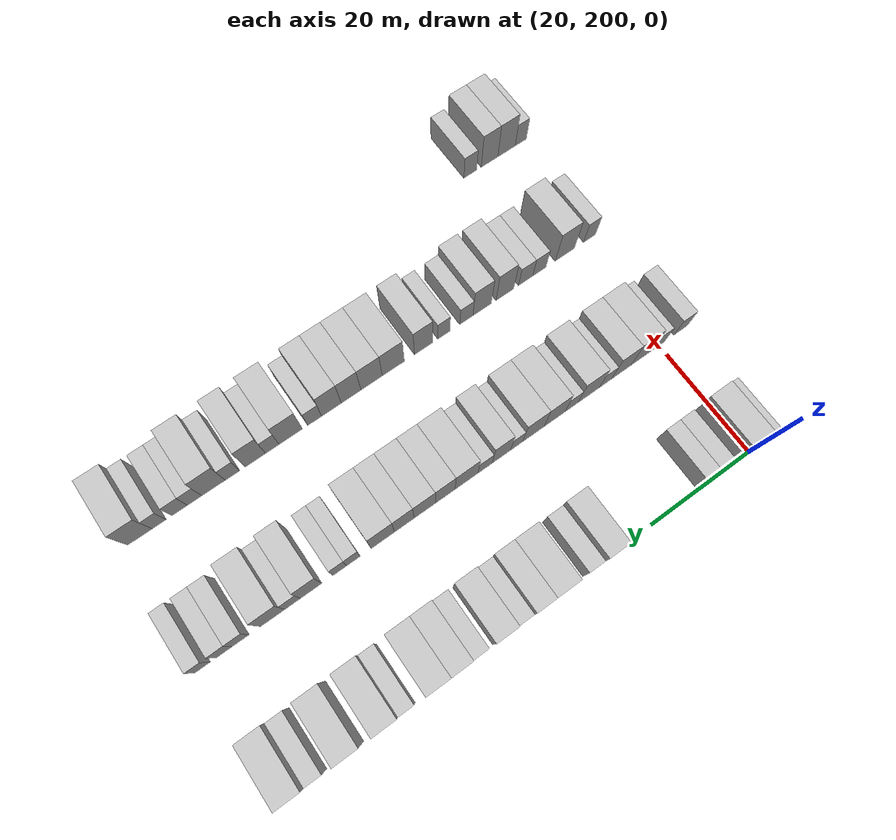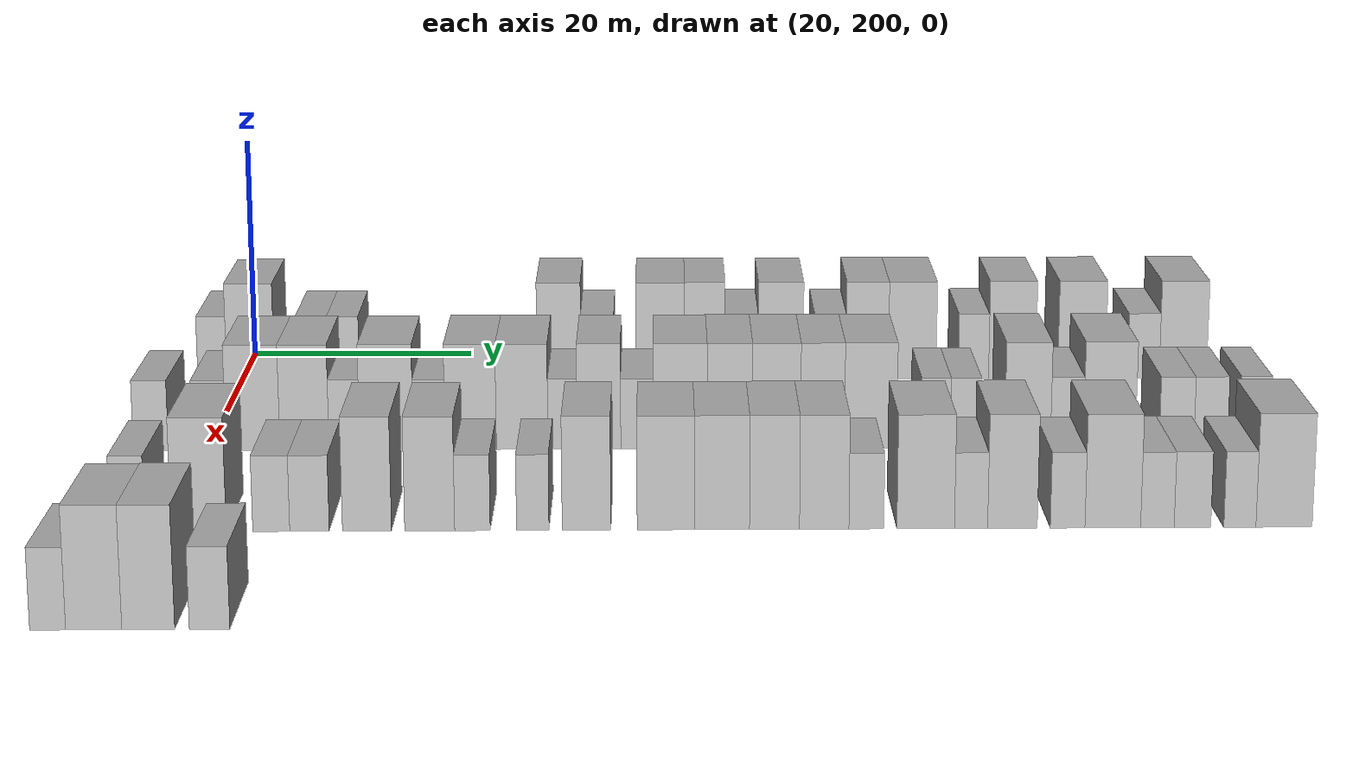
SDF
<sdf version="1.6">
 <world name="default">
  <model name="building_150">
   <static>1</static>
   <pose>25.0000 197.4068 0 0.000000 0.000000 0.000000</pose>
   <link name="link">
    <pose>0 0 3.00 0 0 0</pose>
    <collision name="collision"><geometry><box><size>10.0000 2.5920 6.0000</size></box></geometry></collision>
    <visual name="visual">
     <cast_shadows>0</cast_shadows>
     <geometry><box><size>10.0000 2.5920 6.0000</size></box></geometry>
     <material>
      <script>
       <uri>model://HANNAS_wall/materials/scripts</uri>
       <uri>model://HANNAS_wall/materials/textures</uri>
       <name>vrc/HANNAS_wall</name>
      </script>
     </material>
    </visual>
   </link>
  </model>
  <model name="building_151">
   <static>1</static>
   <pose>25.0000 200.8364 0 0.000000 0.000000 0.000000</pose>
   <link name="link">
    <pose>0 0 4.50 0 0 0</pose>
    <collision name="collision"><geometry><box><size>10.0000 4.2672 9.0000</size></box></geometry></collision>
    <visual name="visual">
     <cast_shadows>0</cast_shadows>
     <geometry><box><size>10.0000 4.2672 9.0000</size></box></geometry>
     <material>
      <script>
       <uri>model://HANNAS_wall/materials/scripts</uri>
       <uri>model://HANNAS_wall/materials/textures</uri>
       <name>vrc/HANNAS_wall</name>
      </script>
     </material>
    </visual>
   </link>
  </model>
  <model name="building_152">
   <static>1</static>
   <pose>25.0000 206.3669 0 0.000000 0.000000 0.000000</pose>
   <link name="link">
    <pose>0 0 3.00 0 0 0</pose>
    <collision name="collision"><geometry><box><size>10.0000 2.7937 6.0000</size></box></geometry></collision>
    <visual name="visual">
     <cast_shadows>0</cast_shadows>
     <geometry><box><size>10.0000 2.7937 6.0000</size></box></geometry>
     <material>
      <script>
       <uri>model://HANNAS_wall/materials/scripts</uri>
       <uri>model://HANNAS_wall/materials/textures</uri>
       <name>vrc/HANNAS_wall</name>
      </script>
     </material>
    </visual>
   </link>
  </model>
  <model name="building_153">
   <static>1</static>
   <pose>25.0000 209.1671 0 0.000000 0.000000 0.000000</pose>
   <link name="link">
    <pose>0 0 3.00 0 0 0</pose>
    <collision name="collision"><geometry><box><size>10.0000 2.8067 6.0000</size></box></geometry></collision>
    <visual name="visual">
     <cast_shadows>0</cast_shadows>
     <geometry><box><size>10.0000 2.8067 6.0000</size></box></geometry>
     <material>
      <script>
       <uri>model://HANNAS_wall/materials/scripts</uri>
       <uri>model://HANNAS_wall/materials/textures</uri>
       <name>vrc/HANNAS_wall</name>
      </script>
     </material>
    </visual>
   </link>
  </model>
  <model name="building_154">
   <static>1</static>
   <pose>25.0000 228.4680 0 0.000000 0.000000 0.000000</pose>
   <link name="link">
    <pose>0 0 4.50 0 0 0</pose>
    <collision name="collision"><geometry><box><size>10.0000 3.9317 9.0000</size></box></geometry></collision>
    <visual name="visual">
     <cast_shadows>0</cast_shadows>
     <geometry><box><size>10.0000 3.9317 9.0000</size></box></geometry>
     <material>
      <script>
       <uri>model://HANNAS_wall/materials/scripts</uri>
       <uri>model://HANNAS_wall/materials/textures</uri>
       <name>vrc/HANNAS_wall</name>
      </script>
     </material>
    </visual>
   </link>
  </model>
  <model name="building_155">
   <static>1</static>
   <pose>25.0000 231.9170 0 0.000000 0.000000 0.000000</pose>
   <link name="link">
    <pose>0 0 3.00 0 0 0</pose>
    <collision name="collision"><geometry><box><size>10.0000 2.9661 6.0000</size></box></geometry></collision>
    <visual name="visual">
     <cast_shadows>0</cast_shadows>
     <geometry><box><size>10.0000 2.9661 6.0000</size></box></geometry>
     <material>
      <script>
       <uri>model://HANNAS_wall/materials/scripts</uri>
       <uri>model://HANNAS_wall/materials/textures</uri>
       <name>vrc/HANNAS_wall</name>
      </script>
     </material>
    </visual>
   </link>
  </model>
  <model name="building_156">
   <static>1</static>
   <pose>25.0000 237.5787 0 0.000000 0.000000 0.000000</pose>
   <link name="link">
    <pose>0 0 4.50 0 0 0</pose>
    <collision name="collision"><geometry><box><size>10.0000 4.3574 9.0000</size></box></geometry></collision>
    <visual name="visual">
     <cast_shadows>0</cast_shadows>
     <geometry><box><size>10.0000 4.3574 9.0000</size></box></geometry>
     <material>
      <script>
       <uri>model://HANNAS_wall/materials/scripts</uri>
       <uri>model://HANNAS_wall/materials/textures</uri>
       <name>vrc/HANNAS_wall</name>
      </script>
     </material>
    </visual>
   </link>
  </model>
  <model name="building_157">
   <static>1</static>
   <pose>25.0000 241.5695 0 0.000000 0.000000 0.000000</pose>
   <link name="link">
    <pose>0 0 4.50 0 0 0</pose>
    <collision name="collision"><geometry><box><size>10.0000 3.6242 9.0000</size></box></geometry></collision>
    <visual name="visual">
     <cast_shadows>0</cast_shadows>
     <geometry><box><size>10.0000 3.6242 9.0000</size></box></geometry>
     <material>
      <script>
       <uri>model://HANNAS_wall/materials/scripts</uri>
       <uri>model://HANNAS_wall/materials/textures</uri>
       <name>vrc/HANNAS_wall</name>
      </script>
     </material>
    </visual>
   </link>
  </model>
  <model name="building_158">
   <static>1</static>
   <pose>25.0000 244.8671 0 0.000000 0.000000 0.000000</pose>
   <link name="link">
    <pose>0 0 3.00 0 0 0</pose>
    <collision name="collision"><geometry><box><size>10.0000 2.9711 6.0000</size></box></geometry></collision>
    <visual name="visual">
     <cast_shadows>0</cast_shadows>
     <geometry><box><size>10.0000 2.9711 6.0000</size></box></geometry>
     <material>
      <script>
       <uri>model://HANNAS_wall/materials/scripts</uri>
       <uri>model://HANNAS_wall/materials/textures</uri>
       <name>vrc/HANNAS_wall</name>
      </script>
     </material>
    </visual>
   </link>
  </model>
  <model name="building_159">
   <static>1</static>
   <pose>25.0000 248.3835 0 0.000000 0.000000 0.000000</pose>
   <link name="link">
    <pose>0 0 4.50 0 0 0</pose>
    <collision name="collision"><geometry><box><size>10.0000 4.0617 9.0000</size></box></geometry></collision>
    <visual name="visual">
     <cast_shadows>0</cast_shadows>
     <geometry><box><size>10.0000 4.0617 9.0000</size></box></geometry>
     <material>
      <script>
       <uri>model://HANNAS_wall/materials/scripts</uri>
       <uri>model://HANNAS_wall/materials/textures</uri>
       <name>vrc/HANNAS_wall</name>
      </script>
     </material>
    </visual>
   </link>
  </model>
  <model name="building_160">
   <static>1</static>
   <pose>25.0000 252.8399 0 0.000000 0.000000 0.000000</pose>
   <link name="link">
    <pose>0 0 3.00 0 0 0</pose>
    <collision name="collision"><geometry><box><size>10.0000 2.8510 6.0000</size></box></geometry></collision>
    <visual name="visual">
     <cast_shadows>0</cast_shadows>
     <geometry><box><size>10.0000 2.8510 6.0000</size></box></geometry>
     <material>
      <script>
       <uri>model://HANNAS_wall/materials/scripts</uri>
       <uri>model://HANNAS_wall/materials/textures</uri>
       <name>vrc/HANNAS_wall</name>
      </script>
     </material>
    </visual>
   </link>
  </model>
  <model name="building_161">
   <static>1</static>
   <pose>25.0000 256.1674 0 0.000000 0.000000 0.000000</pose>
   <link name="link">
    <pose>0 0 4.50 0 0 0</pose>
    <collision name="collision"><geometry><box><size>10.0000 3.8041 9.0000</size></box></geometry></collision>
    <visual name="visual">
     <cast_shadows>0</cast_shadows>
     <geometry><box><size>10.0000 3.8041 9.0000</size></box></geometry>
     <material>
      <script>
       <uri>model://HANNAS_wall/materials/scripts</uri>
       <uri>model://HANNAS_wall/materials/textures</uri>
       <name>vrc/HANNAS_wall</name>
      </script>
     </material>
    </visual>
   </link>
  </model>
  <model name="building_162">
   <static>1</static>
   <pose>25.0000 260.2122 0 0.000000 0.000000 0.000000</pose>
   <link name="link">
    <pose>0 0 4.50 0 0 0</pose>
    <collision name="collision"><geometry><box><size>10.0000 4.2854 9.0000</size></box></geometry></collision>
    <visual name="visual">
     <cast_shadows>0</cast_shadows>
     <geometry><box><size>10.0000 4.2854 9.0000</size></box></geometry>
     <material>
      <script>
       <uri>model://HANNAS_wall/materials/scripts</uri>
       <uri>model://HANNAS_wall/materials/textures</uri>
       <name>vrc/HANNAS_wall</name>
      </script>
     </material>
    </visual>
   </link>
  </model>
  <model name="building_163">
   <static>1</static>
   <pose>25.0000 265.7214 0 0.000000 0.000000 0.000000</pose>
   <link name="link">
    <pose>0 0 3.00 0 0 0</pose>
    <collision name="collision"><geometry><box><size>10.0000 2.7330 6.0000</size></box></geometry></collision>
    <visual name="visual">
     <cast_shadows>0</cast_shadows>
     <geometry><box><size>10.0000 2.7330 6.0000</size></box></geometry>
     <material>
      <script>
       <uri>model://HANNAS_wall/materials/scripts</uri>
       <uri>model://HANNAS_wall/materials/textures</uri>
       <name>vrc/HANNAS_wall</name>
      </script>
     </material>
    </visual>
   </link>
  </model>
  <model name="building_164">
   <static>1</static>
   <pose>25.0000 269.2028 0 0.000000 0.000000 0.000000</pose>
   <link name="link">
    <pose>0 0 4.50 0 0 0</pose>
    <collision name="collision"><geometry><box><size>10.0000 4.2298 9.0000</size></box></geometry></collision>
    <visual name="visual">
     <cast_shadows>0</cast_shadows>
     <geometry><box><size>10.0000 4.2298 9.0000</size></box></geometry>
     <material>
      <script>
       <uri>model://HANNAS_wall/materials/scripts</uri>
       <uri>model://HANNAS_wall/materials/textures</uri>
       <name>vrc/HANNAS_wall</name>
      </script>
     </material>
    </visual>
   </link>
  </model>
  <model name="building_165">
   <static>1</static>
   <pose>25.0000 275.4626 0 0.000000 0.000000 0.000000</pose>
   <link name="link">
    <pose>0 0 4.50 0 0 0</pose>
    <collision name="collision"><geometry><box><size>10.0000 4.2897 9.0000</size></box></geometry></collision>
    <visual name="visual">
     <cast_shadows>0</cast_shadows>
     <geometry><box><size>10.0000 4.2897 9.0000</size></box></geometry>
     <material>
      <script>
       <uri>model://HANNAS_wall/materials/scripts</uri>
       <uri>model://HANNAS_wall/materials/textures</uri>
       <name>vrc/HANNAS_wall</name>
      </script>
     </material>
    </visual>
   </link>
  </model>
  <model name="building_166">
   <static>1</static>
   <pose>25.0000 281.0409 0 0.000000 0.000000 0.000000</pose>
   <link name="link">
    <pose>0 0 3.00 0 0 0</pose>
    <collision name="collision"><geometry><box><size>10.0000 2.8670 6.0000</size></box></geometry></collision>
    <visual name="visual">
     <cast_shadows>0</cast_shadows>
     <geometry><box><size>10.0000 2.8670 6.0000</size></box></geometry>
     <material>
      <script>
       <uri>model://HANNAS_wall/materials/scripts</uri>
       <uri>model://HANNAS_wall/materials/textures</uri>
       <name>vrc/HANNAS_wall</name>
      </script>
     </material>
    </visual>
   </link>
  </model>
  <model name="building_167">
   <static>1</static>
   <pose>25.0000 284.6066 0 0.000000 0.000000 0.000000</pose>
   <link name="link">
    <pose>0 0 4.50 0 0 0</pose>
    <collision name="collision"><geometry><box><size>10.0000 4.2644 9.0000</size></box></geometry></collision>
    <visual name="visual">
     <cast_shadows>0</cast_shadows>
     <geometry><box><size>10.0000 4.2644 9.0000</size></box></geometry>
     <material>
      <script>
       <uri>model://HANNAS_wall/materials/scripts</uri>
       <uri>model://HANNAS_wall/materials/textures</uri>
       <name>vrc/HANNAS_wall</name>
      </script>
     </material>
    </visual>
   </link>
  </model>
  <model name="building_328">
   <static>1</static>
   <pose>47.0000 195.3979 0 0.000000 0.000000 0.000000</pose>
   <link name="link">
    <pose>0 0 3.00 0 0 0</pose>
    <collision name="collision"><geometry><box><size>10.0000 2.8920 6.0000</size></box></geometry></collision>
    <visual name="visual">
     <cast_shadows>0</cast_shadows>
     <geometry><box><size>10.0000 2.8920 6.0000</size></box></geometry>
     <material>
      <script>
       <uri>model://HANNAS_wall/materials/scripts</uri>
       <uri>model://HANNAS_wall/materials/textures</uri>
       <name>vrc/HANNAS_wall</name>
      </script>
     </material>
    </visual>
   </link>
  </model>
  <model name="building_329">
   <static>1</static>
   <pose>47.0000 200.2206 0 0.000000 0.000000 0.000000</pose>
   <link name="link">
    <pose>0 0 3.00 0 0 0</pose>
    <collision name="collision"><geometry><box><size>10.0000 2.7534 6.0000</size></box></geometry></collision>
    <visual name="visual">
     <cast_shadows>0</cast_shadows>
     <geometry><box><size>10.0000 2.7534 6.0000</size></box></geometry>
     <material>
      <script>
       <uri>model://HANNAS_wall/materials/scripts</uri>
       <uri>model://HANNAS_wall/materials/textures</uri>
       <name>vrc/HANNAS_wall</name>
      </script>
     </material>
    </visual>
   </link>
  </model>
  <model name="building_330">
   <static>1</static>
   <pose>47.0000 203.8257 0 0.000000 0.000000 0.000000</pose>
   <link name="link">
    <pose>0 0 4.50 0 0 0</pose>
    <collision name="collision"><geometry><box><size>10.0000 4.4569 9.0000</size></box></geometry></collision>
    <visual name="visual">
     <cast_shadows>0</cast_shadows>
     <geometry><box><size>10.0000 4.4569 9.0000</size></box></geometry>
     <material>
      <script>
       <uri>model://HANNAS_wall/materials/scripts</uri>
       <uri>model://HANNAS_wall/materials/textures</uri>
       <name>vrc/HANNAS_wall</name>
      </script>
     </material>
    </visual>
   </link>
  </model>
  <model name="building_331">
   <static>1</static>
   <pose>47.0000 208.0830 0 0.000000 0.000000 0.000000</pose>
   <link name="link">
    <pose>0 0 4.50 0 0 0</pose>
    <collision name="collision"><geometry><box><size>10.0000 4.0576 9.0000</size></box></geometry></collision>
    <visual name="visual">
     <cast_shadows>0</cast_shadows>
     <geometry><box><size>10.0000 4.0576 9.0000</size></box></geometry>
     <material>
      <script>
       <uri>model://HANNAS_wall/materials/scripts</uri>
       <uri>model://HANNAS_wall/materials/textures</uri>
       <name>vrc/HANNAS_wall</name>
      </script>
     </material>
    </visual>
   </link>
  </model>
  <model name="building_332">
   <static>1</static>
   <pose>47.0000 211.3780 0 0.000000 0.000000 0.000000</pose>
   <link name="link">
    <pose>0 0 3.00 0 0 0</pose>
    <collision name="collision"><geometry><box><size>10.0000 2.5324 6.0000</size></box></geometry></collision>
    <visual name="visual">
     <cast_shadows>0</cast_shadows>
     <geometry><box><size>10.0000 2.5324 6.0000</size></box></geometry>
     <material>
      <script>
       <uri>model://HANNAS_wall/materials/scripts</uri>
       <uri>model://HANNAS_wall/materials/textures</uri>
       <name>vrc/HANNAS_wall</name>
      </script>
     </material>
    </visual>
   </link>
  </model>
  <model name="building_333">
   <static>1</static>
   <pose>47.0000 214.8588 0 0.000000 0.000000 0.000000</pose>
   <link name="link">
    <pose>0 0 4.50 0 0 0</pose>
    <collision name="collision"><geometry><box><size>10.0000 4.4293 9.0000</size></box></geometry></collision>
    <visual name="visual">
     <cast_shadows>0</cast_shadows>
     <geometry><box><size>10.0000 4.4293 9.0000</size></box></geometry>
     <material>
      <script>
       <uri>model://HANNAS_wall/materials/scripts</uri>
       <uri>model://HANNAS_wall/materials/textures</uri>
       <name>vrc/HANNAS_wall</name>
      </script>
     </material>
    </visual>
   </link>
  </model>
  <model name="building_334">
   <static>1</static>
   <pose>47.0000 218.3932 0 0.000000 0.000000 0.000000</pose>
   <link name="link">
    <pose>0 0 3.00 0 0 0</pose>
    <collision name="collision"><geometry><box><size>10.0000 2.6394 6.0000</size></box></geometry></collision>
    <visual name="visual">
     <cast_shadows>0</cast_shadows>
     <geometry><box><size>10.0000 2.6394 6.0000</size></box></geometry>
     <material>
      <script>
       <uri>model://HANNAS_wall/materials/scripts</uri>
       <uri>model://HANNAS_wall/materials/textures</uri>
       <name>vrc/HANNAS_wall</name>
      </script>
     </material>
    </visual>
   </link>
  </model>
  <model name="building_335">
   <static>1</static>
   <pose>47.0000 221.8338 0 0.000000 0.000000 0.000000</pose>
   <link name="link">
    <pose>0 0 4.50 0 0 0</pose>
    <collision name="collision"><geometry><box><size>10.0000 4.2419 9.0000</size></box></geometry></collision>
    <visual name="visual">
     <cast_shadows>0</cast_shadows>
     <geometry><box><size>10.0000 4.2419 9.0000</size></box></geometry>
     <material>
      <script>
       <uri>model://HANNAS_wall/materials/scripts</uri>
       <uri>model://HANNAS_wall/materials/textures</uri>
       <name>vrc/HANNAS_wall</name>
      </script>
     </material>
    </visual>
   </link>
  </model>
  <model name="building_336">
   <static>1</static>
   <pose>47.0000 226.0921 0 0.000000 0.000000 0.000000</pose>
   <link name="link">
    <pose>0 0 4.50 0 0 0</pose>
    <collision name="collision"><geometry><box><size>10.0000 4.2746 9.0000</size></box></geometry></collision>
    <visual name="visual">
     <cast_shadows>0</cast_shadows>
     <geometry><box><size>10.0000 4.2746 9.0000</size></box></geometry>
     <material>
      <script>
       <uri>model://HANNAS_wall/materials/scripts</uri>
       <uri>model://HANNAS_wall/materials/textures</uri>
       <name>vrc/HANNAS_wall</name>
      </script>
     </material>
    </visual>
   </link>
  </model>
  <model name="building_337">
   <static>1</static>
   <pose>47.0000 229.4382 0 0.000000 0.000000 0.000000</pose>
   <link name="link">
    <pose>0 0 3.00 0 0 0</pose>
    <collision name="collision"><geometry><box><size>10.0000 2.4176 6.0000</size></box></geometry></collision>
    <visual name="visual">
     <cast_shadows>0</cast_shadows>
     <geometry><box><size>10.0000 2.4176 6.0000</size></box></geometry>
     <material>
      <script>
       <uri>model://HANNAS_wall/materials/scripts</uri>
       <uri>model://HANNAS_wall/materials/textures</uri>
       <name>vrc/HANNAS_wall</name>
      </script>
     </material>
    </visual>
   </link>
  </model>
  <model name="building_338">
   <static>1</static>
   <pose>47.0000 232.4544 0 0.000000 0.000000 0.000000</pose>
   <link name="link">
    <pose>0 0 4.50 0 0 0</pose>
    <collision name="collision"><geometry><box><size>10.0000 3.6148 9.0000</size></box></geometry></collision>
    <visual name="visual">
     <cast_shadows>0</cast_shadows>
     <geometry><box><size>10.0000 3.6148 9.0000</size></box></geometry>
     <material>
      <script>
       <uri>model://HANNAS_wall/materials/scripts</uri>
       <uri>model://HANNAS_wall/materials/textures</uri>
       <name>vrc/HANNAS_wall</name>
      </script>
     </material>
    </visual>
   </link>
  </model>
  <model name="building_339">
   <static>1</static>
   <pose>47.0000 235.6270 0 0.000000 0.000000 0.000000</pose>
   <link name="link">
    <pose>0 0 3.00 0 0 0</pose>
    <collision name="collision"><geometry><box><size>10.0000 2.7304 6.0000</size></box></geometry></collision>
    <visual name="visual">
     <cast_shadows>0</cast_shadows>
     <geometry><box><size>10.0000 2.7304 6.0000</size></box></geometry>
     <material>
      <script>
       <uri>model://HANNAS_wall/materials/scripts</uri>
       <uri>model://HANNAS_wall/materials/textures</uri>
       <name>vrc/HANNAS_wall</name>
      </script>
     </material>
    </visual>
   </link>
  </model>
  <model name="building_340">
   <static>1</static>
   <pose>47.0000 239.2073 0 0.000000 0.000000 0.000000</pose>
   <link name="link">
    <pose>0 0 4.50 0 0 0</pose>
    <collision name="collision"><geometry><box><size>10.0000 4.4303 9.0000</size></box></geometry></collision>
    <visual name="visual">
     <cast_shadows>0</cast_shadows>
     <geometry><box><size>10.0000 4.4303 9.0000</size></box></geometry>
     <material>
      <script>
       <uri>model://HANNAS_wall/materials/scripts</uri>
       <uri>model://HANNAS_wall/materials/textures</uri>
       <name>vrc/HANNAS_wall</name>
      </script>
     </material>
    </visual>
   </link>
  </model>
  <model name="building_341">
   <static>1</static>
   <pose>47.0000 243.2934 0 0.000000 0.000000 0.000000</pose>
   <link name="link">
    <pose>0 0 4.50 0 0 0</pose>
    <collision name="collision"><geometry><box><size>10.0000 3.7419 9.0000</size></box></geometry></collision>
    <visual name="visual">
     <cast_shadows>0</cast_shadows>
     <geometry><box><size>10.0000 3.7419 9.0000</size></box></geometry>
     <material>
      <script>
       <uri>model://HANNAS_wall/materials/scripts</uri>
       <uri>model://HANNAS_wall/materials/textures</uri>
       <name>vrc/HANNAS_wall</name>
      </script>
     </material>
    </visual>
   </link>
  </model>
  <model name="building_342">
   <static>1</static>
   <pose>47.0000 247.1725 0 0.000000 0.000000 0.000000</pose>
   <link name="link">
    <pose>0 0 4.50 0 0 0</pose>
    <collision name="collision"><geometry><box><size>10.0000 4.0165 9.0000</size></box></geometry></collision>
    <visual name="visual">
     <cast_shadows>0</cast_shadows>
     <geometry><box><size>10.0000 4.0165 9.0000</size></box></geometry>
     <material>
      <script>
       <uri>model://HANNAS_wall/materials/scripts</uri>
       <uri>model://HANNAS_wall/materials/textures</uri>
       <name>vrc/HANNAS_wall</name>
      </script>
     </material>
    </visual>
   </link>
  </model>
  <model name="building_343">
   <static>1</static>
   <pose>47.0000 251.0013 0 0.000000 0.000000 0.000000</pose>
   <link name="link">
    <pose>0 0 4.50 0 0 0</pose>
    <collision name="collision"><geometry><box><size>10.0000 3.6410 9.0000</size></box></geometry></collision>
    <visual name="visual">
     <cast_shadows>0</cast_shadows>
     <geometry><box><size>10.0000 3.6410 9.0000</size></box></geometry>
     <material>
      <script>
       <uri>model://HANNAS_wall/materials/scripts</uri>
       <uri>model://HANNAS_wall/materials/textures</uri>
       <name>vrc/HANNAS_wall</name>
      </script>
     </material>
    </visual>
   </link>
  </model>
  <model name="building_344">
   <static>1</static>
   <pose>47.0000 254.9928 0 0.000000 0.000000 0.000000</pose>
   <link name="link">
    <pose>0 0 4.50 0 0 0</pose>
    <collision name="collision"><geometry><box><size>10.0000 4.3421 9.0000</size></box></geometry></collision>
    <visual name="visual">
     <cast_shadows>0</cast_shadows>
     <geometry><box><size>10.0000 4.3421 9.0000</size></box></geometry>
     <material>
      <script>
       <uri>model://HANNAS_wall/materials/scripts</uri>
       <uri>model://HANNAS_wall/materials/textures</uri>
       <name>vrc/HANNAS_wall</name>
      </script>
     </material>
    </visual>
   </link>
  </model>
  <model name="building_345">
   <static>1</static>
   <pose>47.0000 260.3818 0 0.000000 0.000000 0.000000</pose>
   <link name="link">
    <pose>0 0 3.00 0 0 0</pose>
    <collision name="collision"><geometry><box><size>10.0000 2.4358 6.0000</size></box></geometry></collision>
    <visual name="visual">
     <cast_shadows>0</cast_shadows>
     <geometry><box><size>10.0000 2.4358 6.0000</size></box></geometry>
     <material>
      <script>
       <uri>model://HANNAS_wall/materials/scripts</uri>
       <uri>model://HANNAS_wall/materials/textures</uri>
       <name>vrc/HANNAS_wall</name>
      </script>
     </material>
    </visual>
   </link>
  </model>
  <model name="building_346">
   <static>1</static>
   <pose>47.0000 262.8618 0 0.000000 0.000000 0.000000</pose>
   <link name="link">
    <pose>0 0 3.00 0 0 0</pose>
    <collision name="collision"><geometry><box><size>10.0000 2.5242 6.0000</size></box></geometry></collision>
    <visual name="visual">
     <cast_shadows>0</cast_shadows>
     <geometry><box><size>10.0000 2.5242 6.0000</size></box></geometry>
     <material>
      <script>
       <uri>model://HANNAS_wall/materials/scripts</uri>
       <uri>model://HANNAS_wall/materials/textures</uri>
       <name>vrc/HANNAS_wall</name>
      </script>
     </material>
    </visual>
   </link>
  </model>
  <model name="building_347">
   <static>1</static>
   <pose>47.0000 268.0320 0 0.000000 0.000000 0.000000</pose>
   <link name="link">
    <pose>0 0 4.50 0 0 0</pose>
    <collision name="collision"><geometry><box><size>10.0000 3.8161 9.0000</size></box></geometry></collision>
    <visual name="visual">
     <cast_shadows>0</cast_shadows>
     <geometry><box><size>10.0000 3.8161 9.0000</size></box></geometry>
     <material>
      <script>
       <uri>model://HANNAS_wall/materials/scripts</uri>
       <uri>model://HANNAS_wall/materials/textures</uri>
       <name>vrc/HANNAS_wall</name>
      </script>
     </material>
    </visual>
   </link>
  </model>
  <model name="building_348">
   <static>1</static>
   <pose>47.0000 271.3083 0 0.000000 0.000000 0.000000</pose>
   <link name="link">
    <pose>0 0 3.00 0 0 0</pose>
    <collision name="collision"><geometry><box><size>10.0000 2.7366 6.0000</size></box></geometry></collision>
    <visual name="visual">
     <cast_shadows>0</cast_shadows>
     <geometry><box><size>10.0000 2.7366 6.0000</size></box></geometry>
     <material>
      <script>
       <uri>model://HANNAS_wall/materials/scripts</uri>
       <uri>model://HANNAS_wall/materials/textures</uri>
       <name>vrc/HANNAS_wall</name>
      </script>
     </material>
    </visual>
   </link>
  </model>
  <model name="building_349">
   <static>1</static>
   <pose>47.0000 274.8370 0 0.000000 0.000000 0.000000</pose>
   <link name="link">
    <pose>0 0 4.50 0 0 0</pose>
    <collision name="collision"><geometry><box><size>10.0000 4.3208 9.0000</size></box></geometry></collision>
    <visual name="visual">
     <cast_shadows>0</cast_shadows>
     <geometry><box><size>10.0000 4.3208 9.0000</size></box></geometry>
     <material>
      <script>
       <uri>model://HANNAS_wall/materials/scripts</uri>
       <uri>model://HANNAS_wall/materials/textures</uri>
       <name>vrc/HANNAS_wall</name>
      </script>
     </material>
    </visual>
   </link>
  </model>
  <model name="building_350">
   <static>1</static>
   <pose>47.0000 280.4398 0 0.000000 0.000000 0.000000</pose>
   <link name="link">
    <pose>0 0 3.00 0 0 0</pose>
    <collision name="collision"><geometry><box><size>10.0000 2.8848 6.0000</size></box></geometry></collision>
    <visual name="visual">
     <cast_shadows>0</cast_shadows>
     <geometry><box><size>10.0000 2.8848 6.0000</size></box></geometry>
     <material>
      <script>
       <uri>model://HANNAS_wall/materials/scripts</uri>
       <uri>model://HANNAS_wall/materials/textures</uri>
       <name>vrc/HANNAS_wall</name>
      </script>
     </material>
    </visual>
   </link>
  </model>
  <model name="building_351">
   <static>1</static>
   <pose>47.0000 283.2811 0 0.000000 0.000000 0.000000</pose>
   <link name="link">
    <pose>0 0 3.00 0 0 0</pose>
    <collision name="collision"><geometry><box><size>10.0000 2.7979 6.0000</size></box></geometry></collision>
    <visual name="visual">
     <cast_shadows>0</cast_shadows>
     <geometry><box><size>10.0000 2.7979 6.0000</size></box></geometry>
     <material>
      <script>
       <uri>model://HANNAS_wall/materials/scripts</uri>
       <uri>model://HANNAS_wall/materials/textures</uri>
       <name>vrc/HANNAS_wall</name>
      </script>
     </material>
    </visual>
   </link>
  </model>
  <model name="building_352">
   <static>1</static>
   <pose>47.0000 286.9583 0 0.000000 0.000000 0.000000</pose>
   <link name="link">
    <pose>0 0 3.00 0 0 0</pose>
    <collision name="collision"><geometry><box><size>10.0000 2.5564 6.0000</size></box></geometry></collision>
    <visual name="visual">
     <cast_shadows>0</cast_shadows>
     <geometry><box><size>10.0000 2.5564 6.0000</size></box></geometry>
     <material>
      <script>
       <uri>model://HANNAS_wall/materials/scripts</uri>
       <uri>model://HANNAS_wall/materials/textures</uri>
       <name>vrc/HANNAS_wall</name>
      </script>
     </material>
    </visual>
   </link>
  </model>
  <model name="building_512">
   <static>1</static>
   <pose>69.0000 197.1210 0 0.000000 0.000000 0.000000</pose>
   <link name="link">
    <pose>0 0 3.00 0 0 0</pose>
    <collision name="collision"><geometry><box><size>10.0000 2.6174 6.0000</size></box></geometry></collision>
    <visual name="visual">
     <cast_shadows>0</cast_shadows>
     <geometry><box><size>10.0000 2.6174 6.0000</size></box></geometry>
     <material>
      <script>
       <uri>model://HANNAS_wall/materials/scripts</uri>
       <uri>model://HANNAS_wall/materials/textures</uri>
       <name>vrc/HANNAS_wall</name>
      </script>
     </material>
    </visual>
   </link>
  </model>
  <model name="building_513">
   <static>1</static>
   <pose>69.0000 202.5084 0 0.000000 0.000000 0.000000</pose>
   <link name="link">
    <pose>0 0 4.50 0 0 0</pose>
    <collision name="collision"><geometry><box><size>10.0000 4.1574 9.0000</size></box></geometry></collision>
    <visual name="visual">
     <cast_shadows>0</cast_shadows>
     <geometry><box><size>10.0000 4.1574 9.0000</size></box></geometry>
     <material>
      <script>
       <uri>model://HANNAS_wall/materials/scripts</uri>
       <uri>model://HANNAS_wall/materials/textures</uri>
       <name>vrc/HANNAS_wall</name>
      </script>
     </material>
    </visual>
   </link>
  </model>
  <model name="building_514">
   <static>1</static>
   <pose>69.0000 207.9866 0 0.000000 0.000000 0.000000</pose>
   <link name="link">
    <pose>0 0 3.00 0 0 0</pose>
    <collision name="collision"><geometry><box><size>10.0000 2.7990 6.0000</size></box></geometry></collision>
    <visual name="visual">
     <cast_shadows>0</cast_shadows>
     <geometry><box><size>10.0000 2.7990 6.0000</size></box></geometry>
     <material>
      <script>
       <uri>model://HANNAS_wall/materials/scripts</uri>
       <uri>model://HANNAS_wall/materials/textures</uri>
       <name>vrc/HANNAS_wall</name>
      </script>
     </material>
    </visual>
   </link>
  </model>
  <model name="building_515">
   <static>1</static>
   <pose>69.0000 210.8841 0 0.000000 0.000000 0.000000</pose>
   <link name="link">
    <pose>0 0 3.00 0 0 0</pose>
    <collision name="collision"><geometry><box><size>10.0000 2.9960 6.0000</size></box></geometry></collision>
    <visual name="visual">
     <cast_shadows>0</cast_shadows>
     <geometry><box><size>10.0000 2.9960 6.0000</size></box></geometry>
     <material>
      <script>
       <uri>model://HANNAS_wall/materials/scripts</uri>
       <uri>model://HANNAS_wall/materials/textures</uri>
       <name>vrc/HANNAS_wall</name>
      </script>
     </material>
    </visual>
   </link>
  </model>
  <model name="building_516">
   <static>1</static>
   <pose>69.0000 215.2425 0 0.000000 0.000000 0.000000</pose>
   <link name="link">
    <pose>0 0 4.50 0 0 0</pose>
    <collision name="collision"><geometry><box><size>10.0000 3.7209 9.0000</size></box></geometry></collision>
    <visual name="visual">
     <cast_shadows>0</cast_shadows>
     <geometry><box><size>10.0000 3.7209 9.0000</size></box></geometry>
     <material>
      <script>
       <uri>model://HANNAS_wall/materials/scripts</uri>
       <uri>model://HANNAS_wall/materials/textures</uri>
       <name>vrc/HANNAS_wall</name>
      </script>
     </material>
    </visual>
   </link>
  </model>
  <model name="building_517">
   <static>1</static>
   <pose>69.0000 219.9989 0 0.000000 0.000000 0.000000</pose>
   <link name="link">
    <pose>0 0 4.50 0 0 0</pose>
    <collision name="collision"><geometry><box><size>10.0000 3.7919 9.0000</size></box></geometry></collision>
    <visual name="visual">
     <cast_shadows>0</cast_shadows>
     <geometry><box><size>10.0000 3.7919 9.0000</size></box></geometry>
     <material>
      <script>
       <uri>model://HANNAS_wall/materials/scripts</uri>
       <uri>model://HANNAS_wall/materials/textures</uri>
       <name>vrc/HANNAS_wall</name>
      </script>
     </material>
    </visual>
   </link>
  </model>
  <model name="building_518">
   <static>1</static>
   <pose>69.0000 223.2431 0 0.000000 0.000000 0.000000</pose>
   <link name="link">
    <pose>0 0 3.00 0 0 0</pose>
    <collision name="collision"><geometry><box><size>10.0000 2.6966 6.0000</size></box></geometry></collision>
    <visual name="visual">
     <cast_shadows>0</cast_shadows>
     <geometry><box><size>10.0000 2.6966 6.0000</size></box></geometry>
     <material>
      <script>
       <uri>model://HANNAS_wall/materials/scripts</uri>
       <uri>model://HANNAS_wall/materials/textures</uri>
       <name>vrc/HANNAS_wall</name>
      </script>
     </material>
    </visual>
   </link>
  </model>
  <model name="building_519">
   <static>1</static>
   <pose>69.0000 227.8235 0 0.000000 0.000000 0.000000</pose>
   <link name="link">
    <pose>0 0 3.00 0 0 0</pose>
    <collision name="collision"><geometry><box><size>10.0000 2.4642 6.0000</size></box></geometry></collision>
    <visual name="visual">
     <cast_shadows>0</cast_shadows>
     <geometry><box><size>10.0000 2.4642 6.0000</size></box></geometry>
     <material>
      <script>
       <uri>model://HANNAS_wall/materials/scripts</uri>
       <uri>model://HANNAS_wall/materials/textures</uri>
       <name>vrc/HANNAS_wall</name>
      </script>
     </material>
    </visual>
   </link>
  </model>
  <model name="building_520">
   <static>1</static>
   <pose>69.0000 231.9044 0 0.000000 0.000000 0.000000</pose>
   <link name="link">
    <pose>0 0 4.50 0 0 0</pose>
    <collision name="collision"><geometry><box><size>10.0000 3.6976 9.0000</size></box></geometry></collision>
    <visual name="visual">
     <cast_shadows>0</cast_shadows>
     <geometry><box><size>10.0000 3.6976 9.0000</size></box></geometry>
     <material>
      <script>
       <uri>model://HANNAS_wall/materials/scripts</uri>
       <uri>model://HANNAS_wall/materials/textures</uri>
       <name>vrc/HANNAS_wall</name>
      </script>
     </material>
    </visual>
   </link>
  </model>
  <model name="building_521">
   <static>1</static>
   <pose>69.0000 237.9337 0 0.000000 0.000000 0.000000</pose>
   <link name="link">
    <pose>0 0 4.50 0 0 0</pose>
    <collision name="collision"><geometry><box><size>10.0000 4.3610 9.0000</size></box></geometry></collision>
    <visual name="visual">
     <cast_shadows>0</cast_shadows>
     <geometry><box><size>10.0000 4.3610 9.0000</size></box></geometry>
     <material>
      <script>
       <uri>model://HANNAS_wall/materials/scripts</uri>
       <uri>model://HANNAS_wall/materials/textures</uri>
       <name>vrc/HANNAS_wall</name>
      </script>
     </material>
    </visual>
   </link>
  </model>
  <model name="building_522">
   <static>1</static>
   <pose>69.0000 242.2038 0 0.000000 0.000000 0.000000</pose>
   <link name="link">
    <pose>0 0 4.50 0 0 0</pose>
    <collision name="collision"><geometry><box><size>10.0000 4.1793 9.0000</size></box></geometry></collision>
    <visual name="visual">
     <cast_shadows>0</cast_shadows>
     <geometry><box><size>10.0000 4.1793 9.0000</size></box></geometry>
     <material>
      <script>
       <uri>model://HANNAS_wall/materials/scripts</uri>
       <uri>model://HANNAS_wall/materials/textures</uri>
       <name>vrc/HANNAS_wall</name>
      </script>
     </material>
    </visual>
   </link>
  </model>
  <model name="building_523">
   <static>1</static>
   <pose>69.0000 246.1979 0 0.000000 0.000000 0.000000</pose>
   <link name="link">
    <pose>0 0 4.50 0 0 0</pose>
    <collision name="collision"><geometry><box><size>10.0000 3.8090 9.0000</size></box></geometry></collision>
    <visual name="visual">
     <cast_shadows>0</cast_shadows>
     <geometry><box><size>10.0000 3.8090 9.0000</size></box></geometry>
     <material>
      <script>
       <uri>model://HANNAS_wall/materials/scripts</uri>
       <uri>model://HANNAS_wall/materials/textures</uri>
       <name>vrc/HANNAS_wall</name>
      </script>
     </material>
    </visual>
   </link>
  </model>
  <model name="building_524">
   <static>1</static>
   <pose>69.0000 249.9816 0 0.000000 0.000000 0.000000</pose>
   <link name="link">
    <pose>0 0 4.50 0 0 0</pose>
    <collision name="collision"><geometry><box><size>10.0000 3.7584 9.0000</size></box></geometry></collision>
    <visual name="visual">
     <cast_shadows>0</cast_shadows>
     <geometry><box><size>10.0000 3.7584 9.0000</size></box></geometry>
     <material>
      <script>
       <uri>model://HANNAS_wall/materials/scripts</uri>
       <uri>model://HANNAS_wall/materials/textures</uri>
       <name>vrc/HANNAS_wall</name>
      </script>
     </material>
    </visual>
   </link>
  </model>
  <model name="building_525">
   <static>1</static>
   <pose>69.0000 253.1900 0 0.000000 0.000000 0.000000</pose>
   <link name="link">
    <pose>0 0 3.00 0 0 0</pose>
    <collision name="collision"><geometry><box><size>10.0000 2.6584 6.0000</size></box></geometry></collision>
    <visual name="visual">
     <cast_shadows>0</cast_shadows>
     <geometry><box><size>10.0000 2.6584 6.0000</size></box></geometry>
     <material>
      <script>
       <uri>model://HANNAS_wall/materials/scripts</uri>
       <uri>model://HANNAS_wall/materials/textures</uri>
       <name>vrc/HANNAS_wall</name>
      </script>
     </material>
    </visual>
   </link>
  </model>
  <model name="building_526">
   <static>1</static>
   <pose>69.0000 257.7099 0 0.000000 0.000000 0.000000</pose>
   <link name="link">
    <pose>0 0 4.50 0 0 0</pose>
    <collision name="collision"><geometry><box><size>10.0000 4.3813 9.0000</size></box></geometry></collision>
    <visual name="visual">
     <cast_shadows>0</cast_shadows>
     <geometry><box><size>10.0000 4.3813 9.0000</size></box></geometry>
     <material>
      <script>
       <uri>model://HANNAS_wall/materials/scripts</uri>
       <uri>model://HANNAS_wall/materials/textures</uri>
       <name>vrc/HANNAS_wall</name>
      </script>
     </material>
    </visual>
   </link>
  </model>
  <model name="building_527">
   <static>1</static>
   <pose>69.0000 261.1650 0 0.000000 0.000000 0.000000</pose>
   <link name="link">
    <pose>0 0 3.00 0 0 0</pose>
    <collision name="collision"><geometry><box><size>10.0000 2.5290 6.0000</size></box></geometry></collision>
    <visual name="visual">
     <cast_shadows>0</cast_shadows>
     <geometry><box><size>10.0000 2.5290 6.0000</size></box></geometry>
     <material>
      <script>
       <uri>model://HANNAS_wall/materials/scripts</uri>
       <uri>model://HANNAS_wall/materials/textures</uri>
       <name>vrc/HANNAS_wall</name>
      </script>
     </material>
    </visual>
   </link>
  </model>
  <model name="building_528">
   <static>1</static>
   <pose>69.0000 264.3213 0 0.000000 0.000000 0.000000</pose>
   <link name="link">
    <pose>0 0 4.50 0 0 0</pose>
    <collision name="collision"><geometry><box><size>10.0000 3.7836 9.0000</size></box></geometry></collision>
    <visual name="visual">
     <cast_shadows>0</cast_shadows>
     <geometry><box><size>10.0000 3.7836 9.0000</size></box></geometry>
     <material>
      <script>
       <uri>model://HANNAS_wall/materials/scripts</uri>
       <uri>model://HANNAS_wall/materials/textures</uri>
       <name>vrc/HANNAS_wall</name>
      </script>
     </material>
    </visual>
   </link>
  </model>
  <model name="building_529">
   <static>1</static>
   <pose>69.0000 268.5331 0 0.000000 0.000000 0.000000</pose>
   <link name="link">
    <pose>0 0 3.00 0 0 0</pose>
    <collision name="collision"><geometry><box><size>10.0000 2.6400 6.0000</size></box></geometry></collision>
    <visual name="visual">
     <cast_shadows>0</cast_shadows>
     <geometry><box><size>10.0000 2.6400 6.0000</size></box></geometry>
     <material>
      <script>
       <uri>model://HANNAS_wall/materials/scripts</uri>
       <uri>model://HANNAS_wall/materials/textures</uri>
       <name>vrc/HANNAS_wall</name>
      </script>
     </material>
    </visual>
   </link>
  </model>
  <model name="building_530">
   <static>1</static>
   <pose>69.0000 271.9779 0 0.000000 0.000000 0.000000</pose>
   <link name="link">
    <pose>0 0 4.50 0 0 0</pose>
    <collision name="collision"><geometry><box><size>10.0000 4.2496 9.0000</size></box></geometry></collision>
    <visual name="visual">
     <cast_shadows>0</cast_shadows>
     <geometry><box><size>10.0000 4.2496 9.0000</size></box></geometry>
     <material>
      <script>
       <uri>model://HANNAS_wall/materials/scripts</uri>
       <uri>model://HANNAS_wall/materials/textures</uri>
       <name>vrc/HANNAS_wall</name>
      </script>
     </material>
    </visual>
   </link>
  </model>
  <model name="building_531">
   <static>1</static>
   <pose>69.0000 275.3834 0 0.000000 0.000000 0.000000</pose>
   <link name="link">
    <pose>0 0 3.00 0 0 0</pose>
    <collision name="collision"><geometry><box><size>10.0000 2.5615 6.0000</size></box></geometry></collision>
    <visual name="visual">
     <cast_shadows>0</cast_shadows>
     <geometry><box><size>10.0000 2.5615 6.0000</size></box></geometry>
     <material>
      <script>
       <uri>model://HANNAS_wall/materials/scripts</uri>
       <uri>model://HANNAS_wall/materials/textures</uri>
       <name>vrc/HANNAS_wall</name>
      </script>
     </material>
    </visual>
   </link>
  </model>
  <model name="building_532">
   <static>1</static>
   <pose>69.0000 278.0634 0 0.000000 0.000000 0.000000</pose>
   <link name="link">
    <pose>0 0 3.00 0 0 0</pose>
    <collision name="collision"><geometry><box><size>10.0000 2.7986 6.0000</size></box></geometry></collision>
    <visual name="visual">
     <cast_shadows>0</cast_shadows>
     <geometry><box><size>10.0000 2.7986 6.0000</size></box></geometry>
     <material>
      <script>
       <uri>model://HANNAS_wall/materials/scripts</uri>
       <uri>model://HANNAS_wall/materials/textures</uri>
       <name>vrc/HANNAS_wall</name>
      </script>
     </material>
    </visual>
   </link>
  </model>
  <model name="building_533">
   <static>1</static>
   <pose>69.0000 281.6883 0 0.000000 0.000000 0.000000</pose>
   <link name="link">
    <pose>0 0 3.00 0 0 0</pose>
    <collision name="collision"><geometry><box><size>10.0000 2.4512 6.0000</size></box></geometry></collision>
    <visual name="visual">
     <cast_shadows>0</cast_shadows>
     <geometry><box><size>10.0000 2.4512 6.0000</size></box></geometry>
     <material>
      <script>
       <uri>model://HANNAS_wall/materials/scripts</uri>
       <uri>model://HANNAS_wall/materials/textures</uri>
       <name>vrc/HANNAS_wall</name>
      </script>
     </material>
    </visual>
   </link>
  </model>
  <model name="building_534">
   <static>1</static>
   <pose>69.0000 285.0611 0 0.000000 0.000000 0.000000</pose>
   <link name="link">
    <pose>0 0 4.50 0 0 0</pose>
    <collision name="collision"><geometry><box><size>10.0000 4.2944 9.0000</size></box></geometry></collision>
    <visual name="visual">
     <cast_shadows>0</cast_shadows>
     <geometry><box><size>10.0000 4.2944 9.0000</size></box></geometry>
     <material>
      <script>
       <uri>model://HANNAS_wall/materials/scripts</uri>
       <uri>model://HANNAS_wall/materials/textures</uri>
       <name>vrc/HANNAS_wall</name>
      </script>
     </material>
    </visual>
   </link>
  </model>
  <model name="building_697">
   <static>1</static>
   <pose>91.0000 195.2564 0 0.000000 0.000000 0.000000</pose>
   <link name="link">
    <pose>0 0 3.00 0 0 0</pose>
    <collision name="collision"><geometry><box><size>10.0000 2.4752 6.0000</size></box></geometry></collision>
    <visual name="visual">
     <cast_shadows>0</cast_shadows>
     <geometry><box><size>10.0000 2.4752 6.0000</size></box></geometry>
     <material>
      <script>
       <uri>model://HANNAS_wall/materials/scripts</uri>
       <uri>model://HANNAS_wall/materials/textures</uri>
       <name>vrc/HANNAS_wall</name>
      </script>
     </material>
    </visual>
   </link>
  </model>
  <model name="building_698">
   <static>1</static>
   <pose>91.0000 198.4265 0 0.000000 0.000000 0.000000</pose>
   <link name="link">
    <pose>0 0 4.50 0 0 0</pose>
    <collision name="collision"><geometry><box><size>10.0000 3.8649 9.0000</size></box></geometry></collision>
    <visual name="visual">
     <cast_shadows>0</cast_shadows>
     <geometry><box><size>10.0000 3.8649 9.0000</size></box></geometry>
     <material>
      <script>
       <uri>model://HANNAS_wall/materials/scripts</uri>
       <uri>model://HANNAS_wall/materials/textures</uri>
       <name>vrc/HANNAS_wall</name>
      </script>
     </material>
    </visual>
   </link>
  </model>
  <model name="building_699">
   <static>1</static>
   <pose>91.0000 202.1816 0 0.000000 0.000000 0.000000</pose>
   <link name="link">
    <pose>0 0 4.50 0 0 0</pose>
    <collision name="collision"><geometry><box><size>10.0000 3.6452 9.0000</size></box></geometry></collision>
    <visual name="visual">
     <cast_shadows>0</cast_shadows>
     <geometry><box><size>10.0000 3.6452 9.0000</size></box></geometry>
     <material>
      <script>
       <uri>model://HANNAS_wall/materials/scripts</uri>
       <uri>model://HANNAS_wall/materials/textures</uri>
       <name>vrc/HANNAS_wall</name>
      </script>
     </material>
    </visual>
   </link>
  </model>
  <model name="building_700">
   <static>1</static>
   <pose>91.0000 206.4015 0 0.000000 0.000000 0.000000</pose>
   <link name="link">
    <pose>0 0 3.00 0 0 0</pose>
    <collision name="collision"><geometry><box><size>10.0000 2.7945 6.0000</size></box></geometry></collision>
    <visual name="visual">
     <cast_shadows>0</cast_shadows>
     <geometry><box><size>10.0000 2.7945 6.0000</size></box></geometry>
     <material>
      <script>
       <uri>model://HANNAS_wall/materials/scripts</uri>
       <uri>model://HANNAS_wall/materials/textures</uri>
       <name>vrc/HANNAS_wall</name>
      </script>
     </material>
    </visual>
   </link>
  </model>
 </world>
</sdf>
